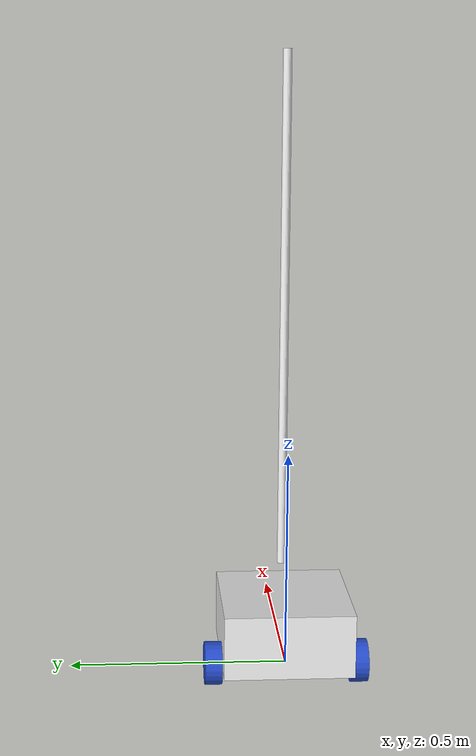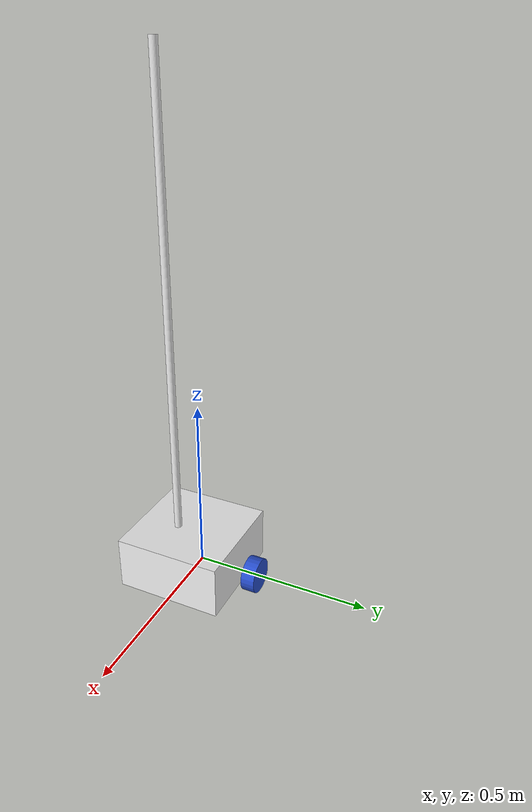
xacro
<?xml version="1.0"?>
<robot xmlns:xacro="http://www.ros.org/wiki/xacro"  name="robot">

    <xacro:include filename="robot_core.xacro" />

    <xacro:include filename="gazebo_control.xacro" />
    <xacro:include filename="light.xacro" />

    <xacro:include filename="lidar_3d.xacro" />

</robot>

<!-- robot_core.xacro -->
<robot xmlns:xacro="http://www.ros.org/wiki/xacro">

    <xacro:include filename="robot_material.xacro" />
    <xacro:include filename="inertial_macros.xacro" />

    <xacro:property name="width" value="0.3" />
    <xacro:property name="length" value="0.3" />
    <xacro:property name="height" value="0.15" />
    <xacro:property name="wheeldiam" value="0.1" />
    <xacro:property name="wheellen" value="0.04" />

    <!-- BASE LINK -->

    <link name="base_link">

    </link>

    <!-- CHASSIS LINK -->

    <joint name="base_footprint_joint" type="fixed">
        <parent link="base_link"/>
        <child link="base_footprint"/>
        <origin xyz="0 0 -${wheeldiam/2}" rpy="0 0 0"/>
    </joint>

    <link name="base_footprint">
    </link>

    <!-- CHASSIS LINK -->

    <joint name="chassis_joint" type="fixed">
        <parent link="base_link"/>
        <child link="chassis"/>
        <origin xyz="${-length/3} 0 0"/>
    </joint>

    <link name="chassis">
        <visual>
            <origin xyz="${length/2} 0 ${height/2}" />
            <geometry>
                <box size="${length} ${width} ${height}" />
            </geometry>
            <material name="white"/>
        </visual>

        <collision>
            <origin xyz="${length/2} 0 ${height/2}" />
            <geometry>
                <box size="${length} ${width} ${height}" />
            </geometry>
        </collision>

        <xacro:inertial_box mass="0.5" x="${length}" y="${width}" z="${height}">
            <origin xyz="${length/2} 0 ${height/2}" rpy="0 0 0"/>
        </xacro:inertial_box>
    </link>

    <gazebo reference="chassis">
        <material>Gazebo/White</material>
    </gazebo>

    <!-- LEFT WHEEL LINK -->

    <joint name="left_wheel_joint" type="continuous">
        <parent link="base_link" />
        <child link="left_wheel"/>
        <origin xyz="0 ${width/2 + wheellen/2} 0" rpy="-${pi/2} 0 0"/>
        <axis xyz="0 0 1"/>
    </joint>

    <link name="left_wheel">
        <visual>
            <geometry>
                <cylinder radius="${wheeldiam/2}" length="${wheellen}"/>
            </geometry>
            <material name="blue"/>
        </visual>

        <collision>
            <geometry>
                <cylinder radius="${wheeldiam/2}" length="${wheellen}"/>
            </geometry>
        </collision>

        <xacro:inertial_cylinder mass="0.1" radius="${wheeldiam/2}" length="${wheellen}">
            <origin xyz="0 0 0" rpy="0 0 0"/>
        </xacro:inertial_cylinder>
    </link>

    <gazebo reference="left_wheel">
        <material>Gazebo/Blue</material>
    </gazebo>

    <!-- RIGHT WHEEL LINK -->

    <joint name="right_wheel_joint" type="continuous">
        <parent link="base_link" />
        <child link="right_wheel"/>
        <origin xyz="0 -${width/2 + wheellen/2} 0" rpy="${pi/2} 0 0"/>
        <axis xyz="0 0 -1"/>
    </joint>

    <link name="right_wheel">
        <visual>
            <geometry>
                <cylinder radius="${wheeldiam/2}" length="${wheellen}"/>
            </geometry>
            <material name="blue"/>
        </visual>

        <collision>
            <geometry>
                <cylinder radius="${wheeldiam/2}" length="${wheellen}"/>
            </geometry>
        </collision>

        <xacro:inertial_cylinder mass="0.1" radius="${wheeldiam/2}" length="${wheellen}">
            <origin xyz="0 0 0" rpy="0 0 0"/>
        </xacro:inertial_cylinder>
    </link>

    <gazebo reference="right_wheel">
        <material>Gazebo/Blue</material>
    </gazebo>

    <!-- CASTER WHEEK LINK -->

    <joint name="caster_wheel_joint" type="fixed">
        <parent link="chassis"/>
        <child link="caster_wheel"/>
        <origin xyz="${3/4 * length} 0 0"/>
    </joint>

    <link name="caster_wheel">
        <visual>
            <geometry>
                <sphere radius="${wheeldiam/2}"/>
            </geometry>
            <material name="black"/>
        </visual>

        <collision>
            <geometry>
                <sphere radius="${wheeldiam/2}"/>
            </geometry>
        </collision>

        <xacro:inertial_sphere mass="0.1" radius="${wheeldiam/2}">
            <origin xyz="0 0 0" rpy="0 0 0"/>
        </xacro:inertial_sphere>
    </link>

    <gazebo reference="caster_wheel">
        <material>Gazebo/Black</material>
        <mu1 value="0.001"/>
        <mu2 value="0.001"/>
    </gazebo>

</robot>

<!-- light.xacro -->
<robot xmlns:xacro="http://www.ros.org/wiki/xacro">

    <!-- LIGHT LINK -->

    <joint name="light_joint" type="fixed">
        <parent link="chassis" />
        <child link="light_link" />
        <origin xyz="${3/4 * length} 0 ${height + 0.6 + 0.05}" rpy="0 0 0" />
    </joint>

    <link name="light_link">
        <visual>
            <origin xyz="0 0 0" rpy="0 0 0" />
            <geometry>
                <cylinder radius="0.01" length="1.2" />
            </geometry>
            <material name="white" />
        </visual>

        <collision>
            <origin xyz="0 0 0" rpy="0 0 0" />
            <geometry>
                <cylinder radius="0.01" length="1.2" />
            </geometry>
        </collision>

        <xacro:inertial_cylinder mass="0.00001" radius="0.02" length="0.1">
            <origin xyz="0 0 0" rpy="0 0 0"/>
        </xacro:inertial_cylinder>
    </link>

    <gazebo reference="light_link">
        <light name='neon_light' type='spot'>
            <cast_shadows>1</cast_shadows>
            <pose>${1/2* length} 0 ${height + 0.5} 0 ${-pi/2} 0</pose>
            <diffuse>0.1 0.0 0.5 1</diffuse>
            <specular>0.1 0.1 0.1 1</specular>
            <direction>0 0 -1</direction>
            <attenuation>
                <range>20</range>
                <constant>0.5</constant>
                <linear>0.01</linear>
                <quadratic>0.001</quadratic>
            </attenuation>
            <spot>
                <inner_angle>1.57</inner_angle>
                <outer_angle>2.44</outer_angle>
                <falloff>1</falloff>
            </spot>
        </light>

    </gazebo>
</robot>

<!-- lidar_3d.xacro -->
<robot xmlns:xacro="http://www.ros.org/wiki/xacro" name="robot">

    <joint name="laser_3d_joint" type="fixed">
        <parent link="chassis" />
        <child link="laser_3d_frame" />
        <origin xyz="${3/4 * length} 0 ${height + 0.5}" rpy="0 0 0" />
    </joint>

    <link name="laser_3d_frame">
    </link>

    <gazebo reference="laser_3d_frame">
        <material>Gazebo/Red</material>

        <sensor name="laser" type="ray">
            <pose>0 0 0 0 0 0</pose>
            <visualize>false</visualize>
            <update_rate>10</update_rate>
            <ray>
                <scan>
                    <horizontal>
                        <samples>100</samples>
                        <resolution>1.0</resolution>
                        <min_angle>-1.22</min_angle>
                        <max_angle>1.22</max_angle>
                    </horizontal>
                    <vertical>
                        <samples>70</samples>
                        <resolution>1.0</resolution>
                        <min_angle>-0.3</min_angle>
                        <max_angle>0.785</max_angle>
                    </vertical>
                </scan>
                <range>
                    <min>0.05</min>
                    <max>5</max>
                    <resolution>0.01</resolution>
                </range>
            </ray>
            <plugin name="laser_scanner" filename="libgazebo_ros_ray_sensor.so">
                <ros>
                    <namespace>/</namespace>
                    <argument>~/out:=scan</argument>
                </ros>
                <output_type>sensor_msgs/PointCloud2</output_type>
                <frame_name>laser_3d_frame</frame_name>
            </plugin>
        </sensor>
    </gazebo>

</robot>
